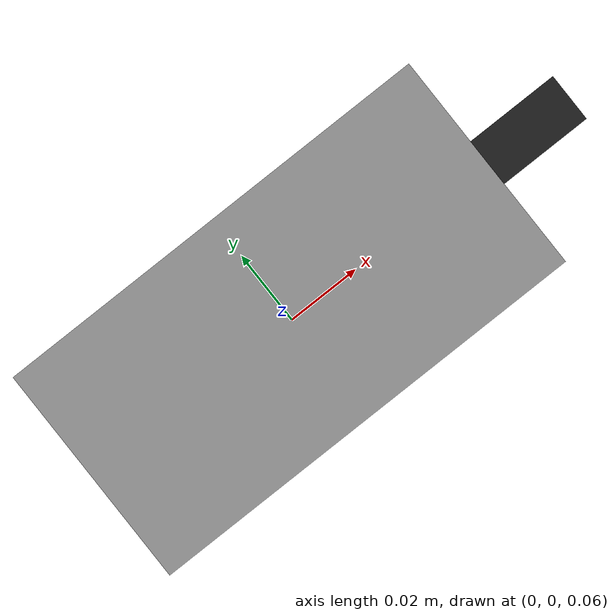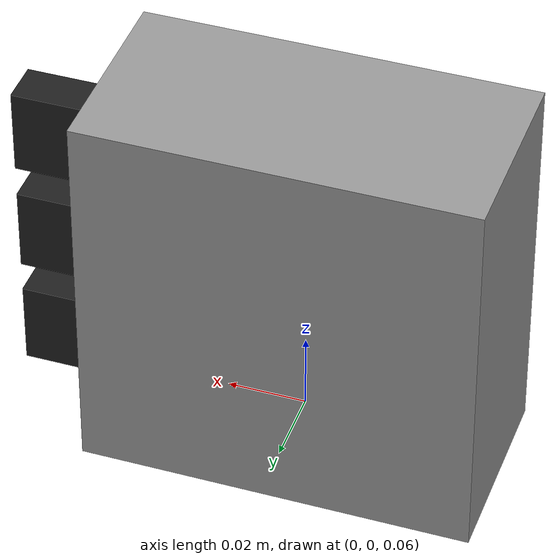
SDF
<?xml version="1.0" ?>

<sdf version="1.6">
  <model name="joint_limit_twitch">
    <link name="palm">
      <pose>0 0 0.1  0 0 0</pose>
      <inertial>
        <mass>0.71</mass>
        <inertia>
          <ixx>0.0007395833333333335</ixx>
          <iyy>0.0011833333333333335</iyy>
          <izz>0.0007395833333333335</izz>
          <ixy>0</ixy>
          <ixz>0</ixz>
          <iyz>0</iyz>
        </inertia>
      </inertial>
      <collision name="collision">
        <geometry>
          <box>
            <size>0.1 0.05 0.1</size>
          </box>
        </geometry>
      </collision>
      <visual name="visual">
        <geometry>
          <box>
            <size>0.1 0.05 0.1</size>
          </box>
        </geometry>
        <material>
          <script>
            <uri>file://media/materials/scripts/gazebo.material</uri>
            <name>Gazebo/Grey</name>
          </script>
        </material>
      </visual>
    </link>

    <link name='index_finger1'>
      <pose>0.05 0 0.13  0 0 0</pose>
      <inertial>
        <mass>0.2</mass>
        <inertia>
          <ixx>1.0083333333333332e-05</ixx>
          <iyy>4.181666666666666e-05</iyy>
          <izz>3.5766666666666664e-05</izz>
          <ixy>0</ixy>
          <ixz>0</ixz>
          <iyz>0</iyz>
        </inertia>
      </inertial>
      <collision name="collision">
        <geometry>
          <box>
            <size>0.045 0.011 0.022</size>
          </box>
        </geometry>
        <surface>
          <contact>
            <ode>
              <kp>1e8</kp>
              <max_vel>1</max_vel>
              <min_depth>0.01</min_depth>
            </ode>
          </contact>
          <friction>
            <ode>
              <mu>0.1</mu>
              <mu2>0.1</mu2>
            </ode>
          </friction>
        </surface>
      </collision>
      <visual name="visual">
        <geometry>
          <box>
            <size>0.045 0.011 0.022</size>
          </box>
        </geometry>
        <material>
          <script>
            <uri>file://media/materials/scripts/gazebo.material</uri>
            <name>Gazebo/Black</name>
          </script>
        </material>
      </visual>
    </link>

    <link name='index_finger2'>
      <pose>0.05 0 0.13  0 0 0</pose>
      <inertial>
        <mass>0.18</mass>
        <inertia>
          <ixx>7.5e-06</ixx>
          <iyy>1.2e-05</iyy>
          <izz>7.5e-06</izz>
          <ixy>0</ixy>
          <ixz>0</ixz>
          <iyz>0</iyz>
        </inertia>
      </inertial>
      <collision name="collision">
        <geometry>
          <box>
            <size>0.02 0.01 0.02</size>
          </box>
        </geometry>
        <surface>
          <contact>
            <ode>
              <kp>1e8</kp>
              <max_vel>1</max_vel>
              <min_depth>0.01</min_depth>
            </ode>
          </contact>
          <friction>
            <ode>
              <mu>0.1</mu>
              <mu2>0.1</mu2>
            </ode>
          </friction>
        </surface>
      </collision>
      <visual name="visual">
        <geometry>
          <box>
            <size>0.02 0.01 0.02</size>
          </box>
        </geometry>
        <material>
          <script>
            <uri>file://media/materials/scripts/gazebo.material</uri>
            <name>Gazebo/Black</name>
          </script>
        </material>
      </visual>
    </link>

    <link name='index_finger3'>
      <pose>0.05 0 0.13  0 0 0</pose>
      <inertial>
        <mass>0.1</mass>
        <inertia>
          <ixx>2.9666666666666665e-06</ixx>
          <iyy>5.466666666666666e-06</iyy>
          <izz>4.166666666666667e-06</izz>
          <ixy>0</ixy>
          <ixz>0</ixz>
          <iyz>0</iyz>
        </inertia>
      </inertial>
      <collision name="collision">
        <geometry>
          <box>
            <size>0.02 0.01 0.016</size>
          </box>
        </geometry>
        <surface>
          <contact>
            <ode>
              <kp>1e8</kp>
              <max_vel>1</max_vel>
              <min_depth>0.01</min_depth>
            </ode>
          </contact>
          <friction>
            <ode>
              <mu>0.1</mu>
              <mu2>0.1</mu2>
            </ode>
          </friction>
        </surface>
      </collision>
      <visual name="visual">
        <geometry>
          <box>
            <size>0.02 0.01 0.016</size>
          </box>
        </geometry>
        <material>
          <script>
            <uri>file://media/materials/scripts/gazebo.material</uri>
            <name>Gazebo/Black</name>
          </script>
        </material>
      </visual>
    </link>

    <link name='middle_finger1'>
      <pose>0.05 0 0.1  0 0 0</pose>
      <inertial>
        <mass>0.2</mass>
        <inertia>
          <ixx>1.0083333333333332e-05</ixx>
          <iyy>4.181666666666666e-05</iyy>
          <izz>3.5766666666666664e-05</izz>
          <ixy>0</ixy>
          <ixz>0</ixz>
          <iyz>0</iyz>
        </inertia>
      </inertial>
      <collision name="collision">
        <geometry>
          <box>
            <size>0.045 0.011 0.022</size>
          </box>
        </geometry>
        <surface>
          <contact>
            <ode>
              <kp>1e8</kp>
              <max_vel>1</max_vel>
              <min_depth>0.01</min_depth>
            </ode>
          </contact>
          <friction>
            <ode>
              <mu>0.1</mu>
              <mu2>0.1</mu2>
            </ode>
          </friction>
        </surface>
      </collision>
      <visual name="visual">
        <geometry>
          <box>
            <size>0.045 0.011 0.022</size>
          </box>
        </geometry>
        <material>
          <script>
            <uri>file://media/materials/scripts/gazebo.material</uri>
            <name>Gazebo/Black</name>
          </script>
        </material>
      </visual>
    </link>

    <link name='middle_finger2'>
      <pose>0.05 0 0.1  0 0 0</pose>
      <inertial>
        <mass>0.18</mass>
        <inertia>
          <ixx>7.5e-06</ixx>
          <iyy>1.2e-05</iyy>
          <izz>7.5e-06</izz>
          <ixy>0</ixy>
          <ixz>0</ixz>
          <iyz>0</iyz>
        </inertia>
      </inertial>
      <collision name="collision">
        <geometry>
          <box>
            <size>0.02 0.01 0.02</size>
          </box>
        </geometry>
        <surface>
          <contact>
            <ode>
              <kp>1e8</kp>
              <max_vel>1</max_vel>
              <min_depth>0.01</min_depth>
            </ode>
          </contact>
          <friction>
            <ode>
              <mu>0.1</mu>
              <mu2>0.1</mu2>
            </ode>
          </friction>
        </surface>
      </collision>
      <visual name="visual">
        <geometry>
          <box>
            <size>0.02 0.01 0.02</size>
          </box>
        </geometry>
        <material>
          <script>
            <uri>file://media/materials/scripts/gazebo.material</uri>
            <name>Gazebo/Black</name>
          </script>
        </material>
      </visual>
    </link>

    <link name='middle_finger3'>
      <pose>0.05 0 0.1  0 0 0</pose>
      <inertial>
        <mass>0.1</mass>
        <inertia>
          <ixx>2.9666666666666665e-06</ixx>
          <iyy>5.466666666666666e-06</iyy>
          <izz>4.166666666666667e-06</izz>
          <ixy>0</ixy>
          <ixz>0</ixz>
          <iyz>0</iyz>
        </inertia>
      </inertial>
      <collision name="collision">
        <geometry>
          <box>
            <size>0.02 0.01 0.016</size>
          </box>
        </geometry>
        <surface>
          <contact>
            <ode>
              <kp>1e8</kp>
              <max_vel>1</max_vel>
              <min_depth>0.01</min_depth>
            </ode>
          </contact>
          <friction>
            <ode>
              <mu>0.1</mu>
              <mu2>0.1</mu2>
            </ode>
          </friction>
        </surface>
      </collision>
      <visual name="visual">
        <geometry>
          <box>
            <size>0.02 0.01 0.016</size>
          </box>
        </geometry>
        <material>
          <script>
            <uri>file://media/materials/scripts/gazebo.material</uri>
            <name>Gazebo/Black</name>
          </script>
        </material>
      </visual>
    </link>

    <link name='pinky_finger1'>
      <pose>0.05 0 0.07  0 0 0</pose>
      <inertial>
        <mass>0.2</mass>
        <inertia>
          <ixx>1.0083333333333332e-05</ixx>
          <iyy>4.181666666666666e-05</iyy>
          <izz>3.5766666666666664e-05</izz>
          <ixy>0</ixy>
          <ixz>0</ixz>
          <iyz>0</iyz>
        </inertia>
      </inertial>
      <collision name="collision">
        <geometry>
          <box>
            <size>0.045 0.011 0.022</size>
          </box>
        </geometry>
        <surface>
          <contact>
            <ode>
              <kp>1e8</kp>
              <max_vel>1</max_vel>
              <min_depth>0.01</min_depth>
            </ode>
          </contact>
          <friction>
            <ode>
              <mu>0.1</mu>
              <mu2>0.1</mu2>
            </ode>
          </friction>
        </surface>
      </collision>
      <visual name="visual">
        <geometry>
          <box>
            <size>0.045 0.011 0.022</size>
          </box>
        </geometry>
        <material>
          <script>
            <uri>file://media/materials/scripts/gazebo.material</uri>
            <name>Gazebo/Black</name>
          </script>
        </material>
      </visual>
    </link>

    <link name='pinky_finger2'>
      <pose>0.05 0 0.07  0 0 0</pose>
      <inertial>
        <mass>0.18</mass>
        <inertia>
          <ixx>7.5e-06</ixx>
          <iyy>1.2e-05</iyy>
          <izz>7.5e-06</izz>
          <ixy>0</ixy>
          <ixz>0</ixz>
          <iyz>0</iyz>
        </inertia>
      </inertial>
      <collision name="collision">
        <geometry>
          <box>
            <size>0.02 0.01 0.02</size>
          </box>
        </geometry>
        <surface>
          <contact>
            <ode>
              <kp>1e8</kp>
              <max_vel>1</max_vel>
              <min_depth>0.01</min_depth>
            </ode>
          </contact>
          <friction>
            <ode>
              <mu>0.1</mu>
              <mu2>0.1</mu2>
            </ode>
          </friction>
        </surface>
      </collision>
      <visual name="visual">
        <geometry>
          <box>
            <size>0.02 0.01 0.02</size>
          </box>
        </geometry>
        <material>
          <script>
            <uri>file://media/materials/scripts/gazebo.material</uri>
            <name>Gazebo/Black</name>
          </script>
        </material>
      </visual>
    </link>

    <link name='pinky_finger3'>
      <pose>0.05 0 0.07  0 0 0</pose>
      <inertial>
        <mass>0.1</mass>
        <inertia>
          <ixx>2.9666666666666665e-06</ixx>
          <iyy>5.466666666666666e-06</iyy>
          <izz>4.166666666666667e-06</izz>
          <ixy>0</ixy>
          <ixz>0</ixz>
          <iyz>0</iyz>
        </inertia>
      </inertial>
      <collision name="collision">
        <geometry>
          <box>
            <size>0.02 0.01 0.016</size>
          </box>
        </geometry>
        <surface>
          <contact>
            <ode>
              <kp>1e8</kp>
              <max_vel>1</max_vel>
              <min_depth>0.01</min_depth>
            </ode>
          </contact>
          <friction>
            <ode>
              <mu>0.1</mu>
              <mu2>0.1</mu2>
            </ode>
          </friction>
        </surface>
      </collision>
      <visual name="visual">
        <geometry>
          <box>
            <size>0.02 0.01 0.016</size>
          </box>
        </geometry>
        <material>
          <script>
            <uri>file://media/materials/scripts/gazebo.material</uri>
            <name>Gazebo/Black</name>
          </script>
        </material>
      </visual>
    </link>

  </model>
</sdf>
